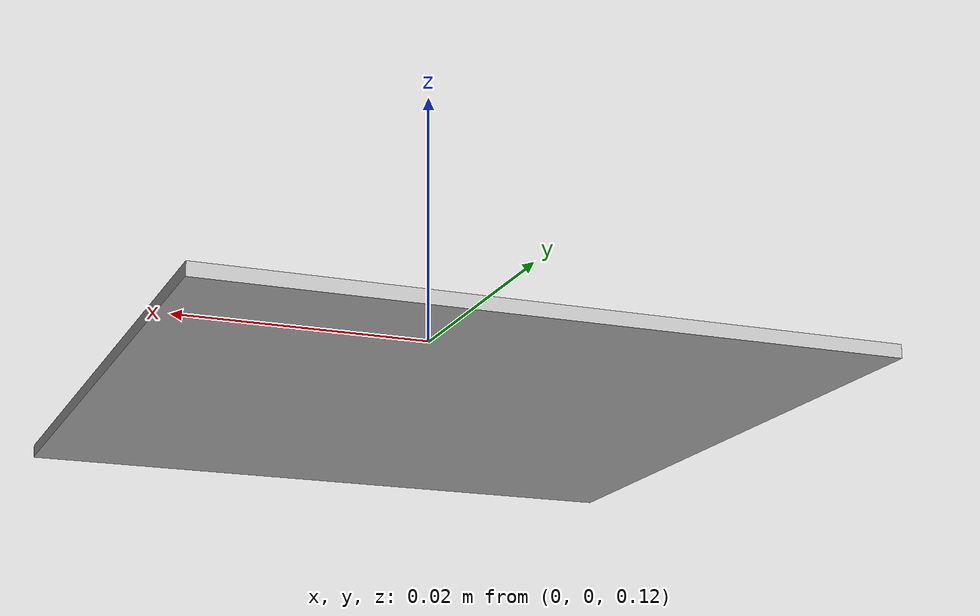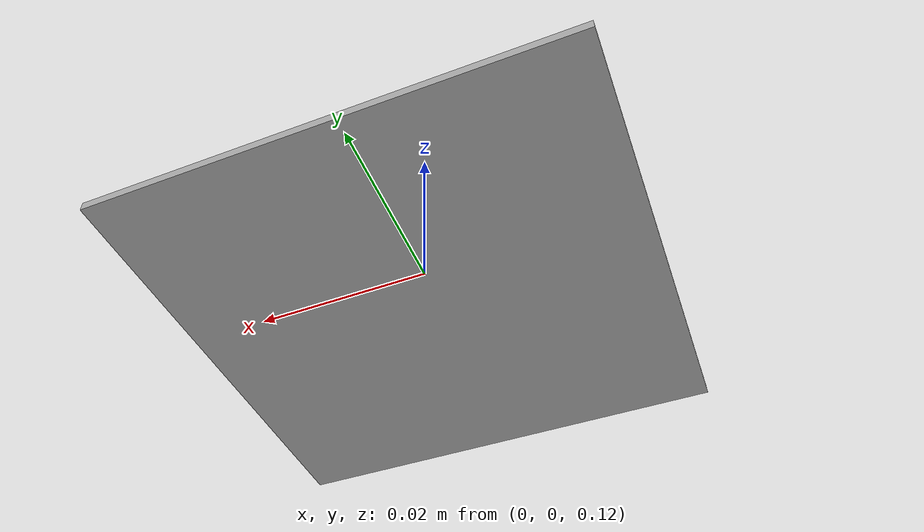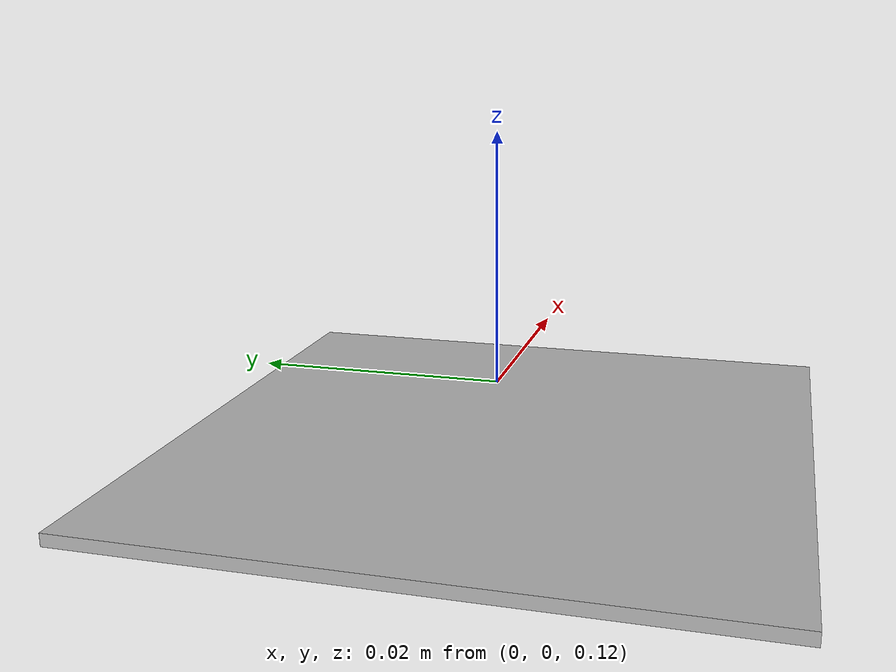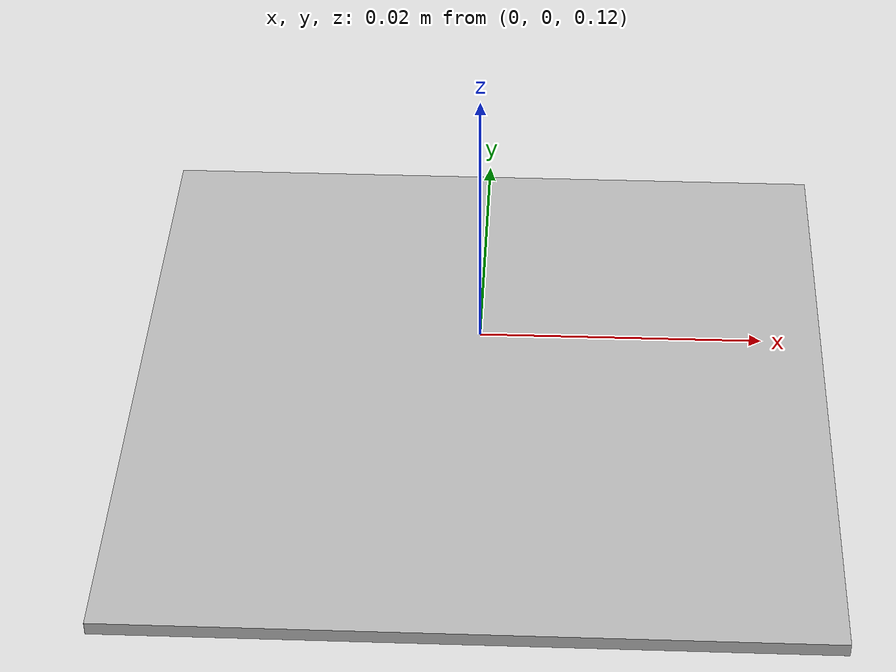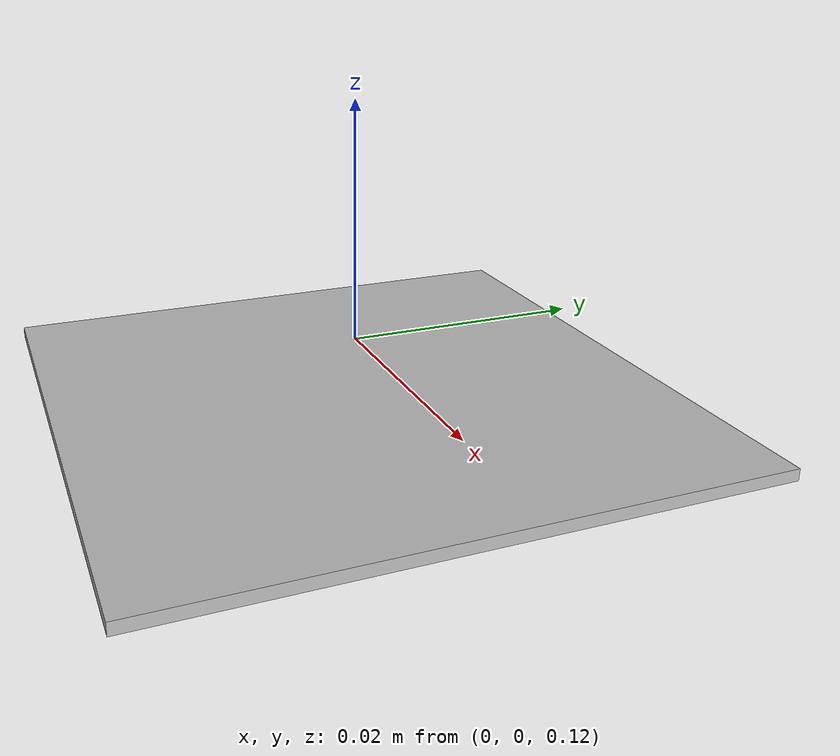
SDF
<?xml version='1.0'?>
<sdf version='1.4'>
  <model name="mark_label_1">
    <link name='link'>
      <pose>0 0 0.115 0 0 0</pose>
      <inertial>
        <mass>0.390</mass>
        <inertia>
          <ixx>0.00058</ixx>
          <ixy>0</ixy>
          <ixz>0</ixz>
          <iyy>0.00058</iyy>
          <iyz>0</iyz>
          <izz>0.00019</izz>
        </inertia>
      </inertial>
      <collision name='collision'>
        <geometry>
                <box>
                  <size>.05 .05 .0001</size>
                </box>
        </geometry>
      </collision>

      <visual name='visual'>
        <geometry>
                <box>
                  <size>.05 .05 .001</size>
                </box>
        </geometry>

        <material>
          <script>
            <uri>model://mark_label_1/materials/scripts</uri>
            <uri>model://mark_label_1/materials/textures</uri>
            <name>Mark/Diffuse_1</name>
          </script>
        </material>
      </visual>
    </link>     
  </model>
</sdf>
